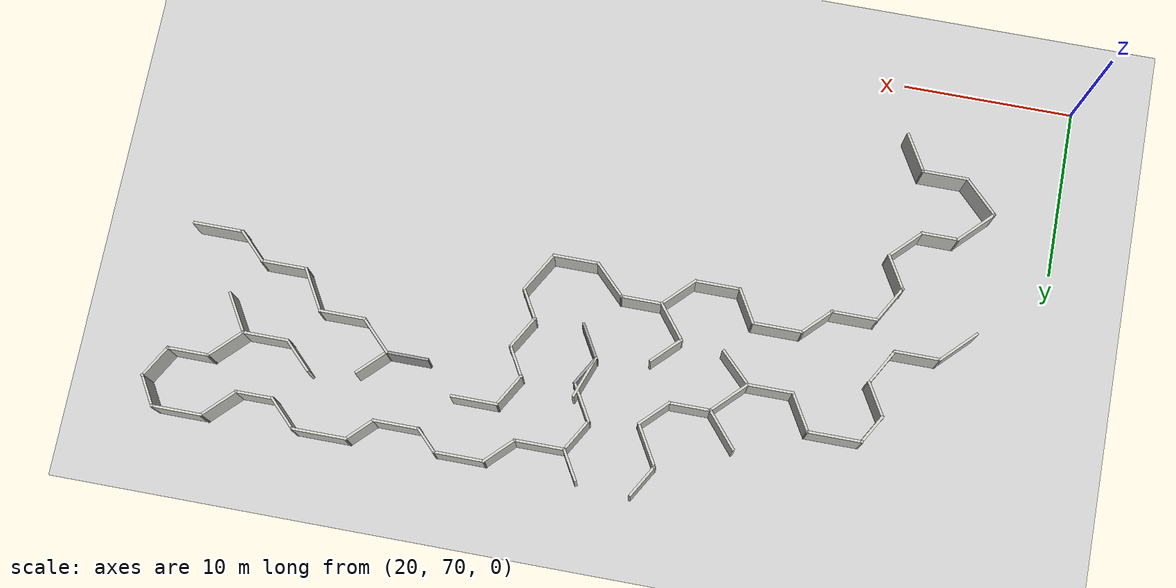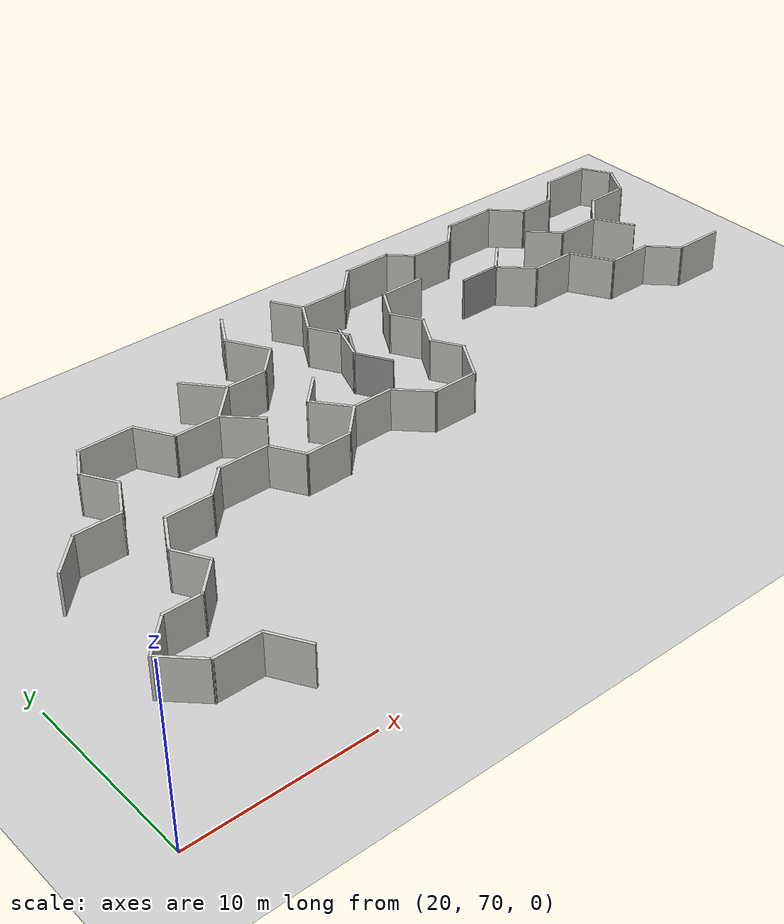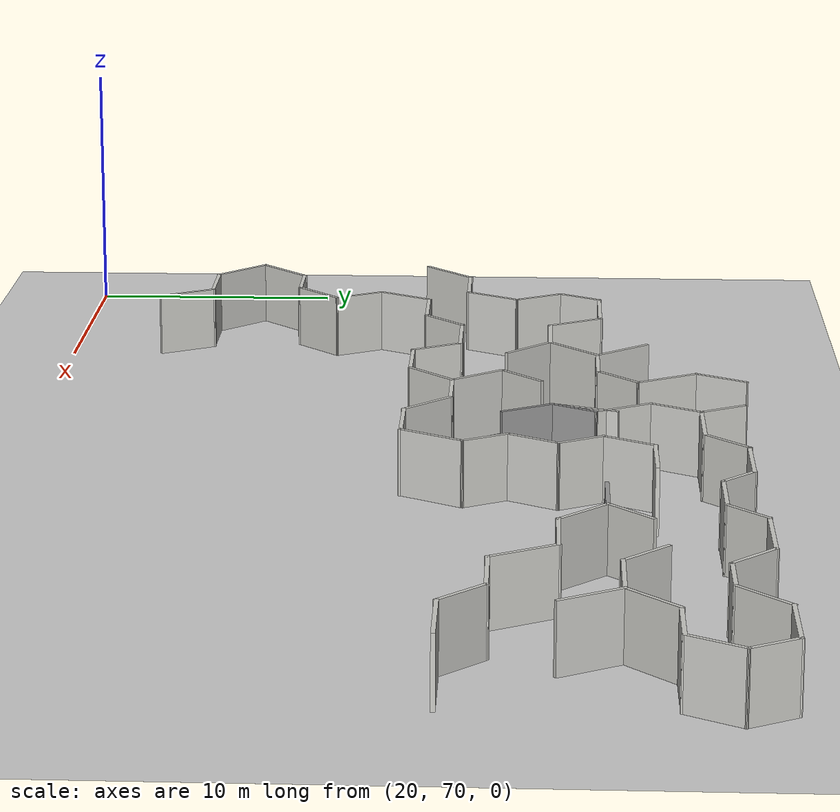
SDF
<sdf version="1.6">
 <world name="default">
  <model name="ground_plane">
   <pose>50 50 0 0 -0 0</pose>
   <static>1</static>
   <link name="link">
    <collision name="collision">
     <geometry><plane><normal>0 0 1</normal><size>100 100</size></plane></geometry>
     <surface><friction><ode><mu>100</mu><mu2>50</mu2></ode></friction></surface>
    </collision>
    <visual name="visual">
     <cast_shadows>0</cast_shadows>
     <geometry><plane><normal>0 0 1</normal><size>100 100</size></plane></geometry>
     <material>
      <script><uri>file://media/materials/scripts/gazebo.material</uri><name>Gazebo/Grey</name></script>
     </material>
    </visual>
   </link>
  </model>
  <model name="maze_1_0">
   <pose>55.5762 81.9377 0 0 -0 3.14</pose>
   <link name="Wall_10">
    <collision name="Wall_10_Collision">
     <geometry><box><size>2 0.15 2.5</size></box></geometry>
     <pose>0 0 1.25 0 -0 0</pose>
    </collision>
    <visual name="Wall_10_Visual">
     <pose>0 0 1.25 0 -0 0</pose>
     <geometry><box><size>2 0.15 2.5</size></box></geometry>
     <material>
      <script><uri>file://media/materials/scripts/gazebo.material</uri><name>Gazebo/Grey</name></script>
      <ambient>1 1 1 1</ambient>
     </material>
     <meta><layer>0</layer></meta>
    </visual>
    <pose>10.0085 -8.88058 0 0 -0 -2.0944</pose>
   </link>
   <link name="Wall_11">
    <collision name="Wall_11_Collision">
     <geometry><box><size>2.5 0.15 2.5</size></box></geometry>
     <pose>0 0 1.25 0 -0 0</pose>
    </collision>
    <visual name="Wall_11_Visual">
     <pose>0 0 1.25 0 -0 0</pose>
     <geometry><box><size>2.5 0.15 2.5</size></box></geometry>
     <material>
      <script><uri>file://media/materials/scripts/gazebo.material</uri><name>Gazebo/CeilingTiled</name></script>
      <ambient>1 1 1 1</ambient>
     </material>
     <meta><layer>0</layer></meta>
    </visual>
    <pose>10.1335 -10.6992 0 0 -0 -1.0472</pose>
   </link>
   <link name="Wall_12">
    <collision name="Wall_12_Collision">
     <geometry><box><size>2.25 0.15 2.5</size></box></geometry>
     <pose>0 0 1.25 0 -0 0</pose>
    </collision>
    <visual name="Wall_12_Visual">
     <pose>0 0 1.25 0 -0 0</pose>
     <geometry><box><size>2.25 0.15 2.5</size></box></geometry>
     <material>
      <script><uri>file://media/materials/scripts/gazebo.material</uri><name>Gazebo/CeilingTiled</name></script>
      <ambient>1 1 1 1</ambient>
     </material>
     <meta><layer>0</layer></meta>
    </visual>
    <pose>10.196 -12.6261 0 0 -0 -2.0944</pose>
   </link>
   <link name="Wall_126">
    <collision name="Wall_126_Collision">
     <geometry><box><size>2.5 0.15 2.5</size></box></geometry>
     <pose>0 0 1.25 0 -0 0</pose>
    </collision>
    <visual name="Wall_126_Visual">
     <pose>0 0 1.25 0 -0 0</pose>
     <geometry><box><size>2.5 0.15 2.5</size></box></geometry>
     <material>
      <script><uri>file://media/materials/scripts/gazebo.material</uri><name>Gazebo/Grey</name></script>
      <ambient>1 1 1 1</ambient>
     </material>
     <meta><layer>0</layer></meta>
    </visual>
    <pose>-0.135221 -9.92253 0 0 -0 3.14159</pose>
   </link>
   <link name="Wall_127">
    <collision name="Wall_127_Collision">
     <geometry><box><size>2.5 0.15 2.5</size></box></geometry>
     <pose>0 0 1.25 0 -0 0</pose>
    </collision>
    <visual name="Wall_127_Visual">
     <pose>0 0 1.25 0 -0 0</pose>
     <geometry><box><size>2.5 0.15 2.5</size></box></geometry>
     <material>
      <script><uri>file://media/materials/scripts/gazebo.material</uri><name>Gazebo/CeilingTiled</name></script>
      <ambient>1 1 1 1</ambient>
     </material>
     <meta><layer>0</layer></meta>
    </visual>
    <pose>-2.14107 -9.09168 0 0 -0 2.35619</pose>
   </link>
   <link name="Wall_128">
    <collision name="Wall_128_Collision">
     <geometry><box><size>2.75 0.15 2.5</size></box></geometry>
     <pose>0 0 1.25 0 -0 0</pose>
    </collision>
    <visual name="Wall_128_Visual">
     <pose>0 0 1.25 0 -0 0</pose>
     <geometry><box><size>2.75 0.15 2.5</size></box></geometry>
     <material>
      <script><uri>file://media/materials/scripts/gazebo.material</uri><name>Gazebo/CeilingTiled</name></script>
      <ambient>1 1 1 1</ambient>
     </material>
     <meta><layer>0</layer></meta>
    </visual>
    <pose>-4.27192 -8.26083 0 0 -0 3.14159</pose>
   </link>
   <link name="Wall_129">
    <collision name="Wall_129_Collision">
     <geometry><box><size>2.75 0.15 2.5</size></box></geometry>
     <pose>0 0 1.25 0 -0 0</pose>
    </collision>
    <visual name="Wall_129_Visual">
     <pose>0 0 1.25 0 -0 0</pose>
     <geometry><box><size>2.75 0.15 2.5</size></box></geometry>
     <material>
      <script><uri>file://media/materials/scripts/gazebo.material</uri><name>Gazebo/CeilingTiled</name></script>
      <ambient>1 1 1 1</ambient>
     </material>
     <meta><layer>0</layer></meta>
    </visual>
    <pose>-6.22192 -7.135 0 0 -0 2.0944</pose>
   </link>
   <link name="Wall_13">
    <collision name="Wall_13_Collision">
     <geometry><box><size>2 0.15 2.5</size></box></geometry>
     <pose>0 0 1.25 0 -0 0</pose>
    </collision>
    <visual name="Wall_13_Visual">
     <pose>0 0 1.25 0 -0 0</pose>
     <geometry><box><size>2 0.15 2.5</size></box></geometry>
     <material>
      <script><uri>file://media/materials/scripts/gazebo.material</uri><name>Gazebo/CeilingTiled</name></script>
      <ambient>1 1 1 1</ambient>
     </material>
     <meta><layer>0</layer></meta>
    </visual>
    <pose>10.1335 -14.3365 0 0 -0 -1.0472</pose>
   </link>
   <link name="Wall_130">
    <collision name="Wall_130_Collision">
     <geometry><box><size>2.75 0.15 2.5</size></box></geometry>
     <pose>0 0 1.25 0 -0 0</pose>
    </collision>
    <visual name="Wall_130_Visual">
     <pose>0 0 1.25 0 -0 0</pose>
     <geometry><box><size>2.75 0.15 2.5</size></box></geometry>
     <material>
      <script><uri>file://media/materials/scripts/gazebo.material</uri><name>Gazebo/CeilingTiled</name></script>
      <ambient>1 1 1 1</ambient>
     </material>
     <meta><layer>0</layer></meta>
    </visual>
    <pose>-8.17192 -6.00916 0 0 -0 3.14159</pose>
   </link>
   <link name="Wall_131">
    <collision name="Wall_131_Collision">
     <geometry><box><size>2.25 0.15 2.5</size></box></geometry>
     <pose>0 0 1.25 0 -0 0</pose>
    </collision>
    <visual name="Wall_131_Visual">
     <pose>0 0 1.25 0 -0 0</pose>
     <geometry><box><size>2.25 0.15 2.5</size></box></geometry>
     <material>
      <script><uri>file://media/materials/scripts/gazebo.material</uri><name>Gazebo/CeilingTiled</name></script>
      <ambient>1 1 1 1</ambient>
     </material>
     <meta><layer>0</layer></meta>
    </visual>
    <pose>-10.2144 -5.2667 0 0 -0 2.35619</pose>
   </link>
   <link name="Wall_132">
    <collision name="Wall_132_Collision">
     <geometry><box><size>3 0.15 2.5</size></box></geometry>
     <pose>0 0 1.25 0 -0 0</pose>
    </collision>
    <visual name="Wall_132_Visual">
     <pose>0 0 1.25 0 -0 0</pose>
     <geometry><box><size>3 0.15 2.5</size></box></geometry>
     <material>
      <script><uri>file://media/materials/scripts/gazebo.material</uri><name>Gazebo/CeilingTiled</name></script>
      <ambient>1 1 1 1</ambient>
     </material>
     <meta><layer>0</layer></meta>
    </visual>
    <pose>-12.3818 -4.52424 0 0 -0 3.14159</pose>
   </link>
   <link name="Wall_135">
    <collision name="Wall_135_Collision">
     <geometry><box><size>2.22826 0.15 2.5</size></box></geometry>
     <pose>0 0 1.25 0 -0 0</pose>
    </collision>
    <visual name="Wall_135_Visual">
     <pose>0 0 1.25 0 -0 0</pose>
     <geometry><box><size>2.22826 0.15 2.5</size></box></geometry>
     <material>
      <script><uri>file://media/materials/scripts/gazebo.material</uri><name>Gazebo/CeilingTiled</name></script>
      <ambient>1 1 1 1</ambient>
     </material>
     <meta><layer>0</layer></meta>
    </visual>
    <pose>-2.04743 -10.6549 0 0 -0 0.782082</pose>
   </link>
   <link name="Wall_137">
    <collision name="Wall_137_Collision">
     <geometry><box><size>2.75 0.15 2.5</size></box></geometry>
     <pose>0 0 1.25 0 -0 0</pose>
    </collision>
    <visual name="Wall_137_Visual">
     <pose>0 0 1.25 0 -0 0</pose>
     <geometry><box><size>2.75 0.15 2.5</size></box></geometry>
     <material>
      <script><uri>file://media/materials/scripts/gazebo.material</uri><name>Gazebo/CeilingTiled</name></script>
      <ambient>1 1 1 1</ambient>
     </material>
     <meta><layer>0</layer></meta>
    </visual>
    <pose>4.12993 -11.7127 0 0 -0 0</pose>
   </link>
   <link name="Wall_138">
    <collision name="Wall_138_Collision">
     <geometry><box><size>2.25 0.15 2.5</size></box></geometry>
     <pose>0 0 1.25 0 -0 0</pose>
    </collision>
    <visual name="Wall_138_Visual">
     <pose>0 0 1.25 0 -0 0</pose>
     <geometry><box><size>2.25 0.15 2.5</size></box></geometry>
     <material>
      <script><uri>file://media/materials/scripts/gazebo.material</uri><name>Gazebo/CeilingTiled</name></script>
      <ambient>1 1 1 1</ambient>
     </material>
     <meta><layer>0</layer></meta>
    </visual>
    <pose>5.95493 -10.8034 0 0 -0 1.0472</pose>
   </link>
   <link name="Wall_139">
    <collision name="Wall_139_Collision">
     <geometry><box><size>2 0.15 2.5</size></box></geometry>
     <pose>0 0 1.25 0 -0 0</pose>
    </collision>
    <visual name="Wall_139_Visual">
     <pose>0 0 1.25 0 -0 0</pose>
     <geometry><box><size>2 0.15 2.5</size></box></geometry>
     <material>
      <script><uri>file://media/materials/scripts/gazebo.material</uri><name>Gazebo/CeilingTiled</name></script>
      <ambient>1 1 1 1</ambient>
     </material>
     <meta><layer>0</layer></meta>
    </visual>
    <pose>6.01743 -9.09296 0 0 -0 2.0944</pose>
   </link>
   <link name="Wall_140">
    <collision name="Wall_140_Collision">
     <geometry><box><size>2.25 0.15 2.5</size></box></geometry>
     <pose>0 0 1.25 0 -0 0</pose>
    </collision>
    <visual name="Wall_140_Visual">
     <pose>0 0 1.25 0 -0 0</pose>
     <geometry><box><size>2.25 0.15 2.5</size></box></geometry>
     <material>
      <script><uri>file://media/materials/scripts/gazebo.material</uri><name>Gazebo/CeilingTiled</name></script>
      <ambient>1 1 1 1</ambient>
     </material>
     <meta><layer>0</layer></meta>
    </visual>
    <pose>6.07993 -7.38256 0 0 -0 1.0472</pose>
   </link>
   <link name="Wall_141">
    <collision name="Wall_141_Collision">
     <geometry><box><size>2 0.15 2.5</size></box></geometry>
     <pose>0 0 1.25 0 -0 0</pose>
    </collision>
    <visual name="Wall_141_Visual">
     <pose>0 0 1.25 0 -0 0</pose>
     <geometry><box><size>2 0.15 2.5</size></box></geometry>
     <material>
      <script><uri>file://media/materials/scripts/gazebo.material</uri><name>Gazebo/CeilingTiled</name></script>
      <ambient>1 1 1 1</ambient>
     </material>
     <meta><layer>0</layer></meta>
    </visual>
    <pose>6.14243 -5.67216 0 0 -0 2.0944</pose>
   </link>
   <link name="Wall_142">
    <collision name="Wall_142_Collision">
     <geometry><box><size>2.75 0.15 2.5</size></box></geometry>
     <pose>0 0 1.25 0 -0 0</pose>
    </collision>
    <visual name="Wall_142_Visual">
     <pose>0 0 1.25 0 -0 0</pose>
     <geometry><box><size>2.75 0.15 2.5</size></box></geometry>
     <material>
      <script><uri>file://media/materials/scripts/gazebo.material</uri><name>Gazebo/CeilingTiled</name></script>
      <ambient>1 1 1 1</ambient>
     </material>
     <meta><layer>0</layer></meta>
    </visual>
    <pose>6.32993 -3.74525 0 0 -0 1.0472</pose>
   </link>
   <link name="Wall_143">
    <collision name="Wall_143_Collision">
     <geometry><box><size>2.75 0.15 2.5</size></box></geometry>
     <pose>0 0 1.25 0 -0 0</pose>
    </collision>
    <visual name="Wall_143_Visual">
     <pose>0 0 1.25 0 -0 0</pose>
     <geometry><box><size>2.75 0.15 2.5</size></box></geometry>
     <material>
      <script><uri>file://media/materials/scripts/gazebo.material</uri><name>Gazebo/CeilingTiled</name></script>
      <ambient>1 1 1 1</ambient>
     </material>
     <meta><layer>0</layer></meta>
    </visual>
    <pose>8.27993 -2.61942 0 0 -0 0</pose>
   </link>
   <link name="Wall_144">
    <collision name="Wall_144_Collision">
     <geometry><box><size>2.5 0.15 2.5</size></box></geometry>
     <pose>0 0 1.25 0 -0 0</pose>
    </collision>
    <visual name="Wall_144_Visual">
     <pose>0 0 1.25 0 -0 0</pose>
     <geometry><box><size>2.5 0.15 2.5</size></box></geometry>
     <material>
      <script><uri>file://media/materials/scripts/gazebo.material</uri><name>Gazebo/CeilingTiled</name></script>
      <ambient>1 1 1 1</ambient>
     </material>
     <meta><layer>0</layer></meta>
    </visual>
    <pose>10.4108 -3.45027 0 0 -0 -0.785398</pose>
   </link>
   <link name="Wall_145">
    <collision name="Wall_145_Collision">
     <geometry><box><size>2.5 0.15 2.5</size></box></geometry>
     <pose>0 0 1.25 0 -0 0</pose>
    </collision>
    <visual name="Wall_145_Visual">
     <pose>0 0 1.25 0 -0 0</pose>
     <geometry><box><size>2.5 0.15 2.5</size></box></geometry>
     <material>
      <script><uri>file://media/materials/scripts/gazebo.material</uri><name>Gazebo/CeilingTiled</name></script>
      <ambient>1 1 1 1</ambient>
     </material>
     <meta><layer>0</layer></meta>
    </visual>
    <pose>12.4166 -4.28112 0 0 -0 0</pose>
   </link>
   <link name="Wall_146">
    <collision name="Wall_146_Collision">
     <geometry><box><size>2.5 0.15 2.5</size></box></geometry>
     <pose>0 0 1.25 0 -0 0</pose>
    </collision>
    <visual name="Wall_146_Visual">
     <pose>0 0 1.25 0 -0 0</pose>
     <geometry><box><size>2.5 0.15 2.5</size></box></geometry>
     <material>
      <script><uri>file://media/materials/scripts/gazebo.material</uri><name>Gazebo/CeilingTiled</name></script>
      <ambient>1 1 1 1</ambient>
     </material>
     <meta><layer>0</layer></meta>
    </visual>
    <pose>14.4225 -3.45027 0 0 -0 0.785398</pose>
   </link>
   <link name="Wall_147">
    <collision name="Wall_147_Collision">
     <geometry><box><size>2.75 0.15 2.5</size></box></geometry>
     <pose>0 0 1.25 0 -0 0</pose>
    </collision>
    <visual name="Wall_147_Visual">
     <pose>0 0 1.25 0 -0 0</pose>
     <geometry><box><size>2.75 0.15 2.5</size></box></geometry>
     <material>
      <script><uri>file://media/materials/scripts/gazebo.material</uri><name>Gazebo/CeilingTiled</name></script>
      <ambient>1 1 1 1</ambient>
     </material>
     <meta><layer>0</layer></meta>
    </visual>
    <pose>16.5533 -2.61942 0 0 -0 0</pose>
   </link>
   <link name="Wall_148">
    <collision name="Wall_148_Collision">
     <geometry><box><size>2.25 0.15 2.5</size></box></geometry>
     <pose>0 0 1.25 0 -0 0</pose>
    </collision>
    <visual name="Wall_148_Visual">
     <pose>0 0 1.25 0 -0 0</pose>
     <geometry><box><size>2.25 0.15 2.5</size></box></geometry>
     <material>
      <script><uri>file://media/materials/scripts/gazebo.material</uri><name>Gazebo/CeilingTiled</name></script>
      <ambient>1 1 1 1</ambient>
     </material>
     <meta><layer>0</layer></meta>
    </visual>
    <pose>18.3783 -3.52874 0 0 -0 -1.0472</pose>
   </link>
   <link name="Wall_149">
    <collision name="Wall_149_Collision">
     <geometry><box><size>3 0.15 2.5</size></box></geometry>
     <pose>0 0 1.25 0 -0 0</pose>
    </collision>
    <visual name="Wall_149_Visual">
     <pose>0 0 1.25 0 -0 0</pose>
     <geometry><box><size>3 0.15 2.5</size></box></geometry>
     <material>
      <script><uri>file://media/materials/scripts/gazebo.material</uri><name>Gazebo/CeilingTiled</name></script>
      <ambient>1 1 1 1</ambient>
     </material>
     <meta><layer>0</layer></meta>
    </visual>
    <pose>20.3283 -4.43807 0 0 -0 0</pose>
   </link>
   <link name="Wall_15">
    <collision name="Wall_15_Collision">
     <geometry><box><size>3 0.15 2.5</size></box></geometry>
     <pose>0 0 1.25 0 -0 0</pose>
    </collision>
    <visual name="Wall_15_Visual">
     <pose>0 0 1.25 0 -0 0</pose>
     <geometry><box><size>3 0.15 2.5</size></box></geometry>
     <material>
      <script><uri>file://media/materials/scripts/gazebo.material</uri><name>Gazebo/CeilingTiled</name></script>
      <ambient>1 1 1 1</ambient>
     </material>
     <meta><layer>0</layer></meta>
    </visual>
    <pose>8.24595 -13.5355 0 0 -0 3.14159</pose>
   </link>
   <link name="Wall_150">
    <collision name="Wall_150_Collision">
     <geometry><box><size>2.25 0.15 2.5</size></box></geometry>
     <pose>0 0 1.25 0 -0 0</pose>
    </collision>
    <visual name="Wall_150_Visual">
     <pose>0 0 1.25 0 -0 0</pose>
     <geometry><box><size>2.25 0.15 2.5</size></box></geometry>
     <material>
      <script><uri>file://media/materials/scripts/gazebo.material</uri><name>Gazebo/CeilingTiled</name></script>
      <ambient>1 1 1 1</ambient>
     </material>
     <meta><layer>0</layer></meta>
    </visual>
    <pose>22.4958 -3.69561 0 0 -0 0.785398</pose>
   </link>
   <link name="Wall_151">
    <collision name="Wall_151_Collision">
     <geometry><box><size>2.75 0.15 2.5</size></box></geometry>
     <pose>0 0 1.25 0 -0 0</pose>
    </collision>
    <visual name="Wall_151_Visual">
     <pose>0 0 1.25 0 -0 0</pose>
     <geometry><box><size>2.75 0.15 2.5</size></box></geometry>
     <material>
      <script><uri>file://media/materials/scripts/gazebo.material</uri><name>Gazebo/CeilingTiled</name></script>
      <ambient>1 1 1 1</ambient>
     </material>
     <meta><layer>0</layer></meta>
    </visual>
    <pose>24.5383 -2.95315 0 0 -0 0</pose>
   </link>
   <link name="Wall_152">
    <collision name="Wall_152_Collision">
     <geometry><box><size>2.5 0.15 2.5</size></box></geometry>
     <pose>0 0 1.25 0 -0 0</pose>
    </collision>
    <visual name="Wall_152_Visual">
     <pose>0 0 1.25 0 -0 0</pose>
     <geometry><box><size>2.5 0.15 2.5</size></box></geometry>
     <material>
      <script><uri>file://media/materials/scripts/gazebo.material</uri><name>Gazebo/CeilingTiled</name></script>
      <ambient>1 1 1 1</ambient>
     </material>
     <meta><layer>0</layer></meta>
    </visual>
    <pose>26.4258 -1.93557 0 0 -0 1.0472</pose>
   </link>
   <link name="Wall_153">
    <collision name="Wall_153_Collision">
     <geometry><box><size>2.25 0.15 2.5</size></box></geometry>
     <pose>0 0 1.25 0 -0 0</pose>
    </collision>
    <visual name="Wall_153_Visual">
     <pose>0 0 1.25 0 -0 0</pose>
     <geometry><box><size>2.25 0.15 2.5</size></box></geometry>
     <material>
      <script><uri>file://media/materials/scripts/gazebo.material</uri><name>Gazebo/CeilingTiled</name></script>
      <ambient>1 1 1 1</ambient>
     </material>
     <meta><layer>0</layer></meta>
    </visual>
    <pose>26.4883 -0.00866 0 0 -0 2.0944</pose>
   </link>
   <link name="Wall_154">
    <collision name="Wall_154_Collision">
     <geometry><box><size>2.5 0.15 2.5</size></box></geometry>
     <pose>0 0 1.25 0 -0 0</pose>
    </collision>
    <visual name="Wall_154_Visual">
     <pose>0 0 1.25 0 -0 0</pose>
     <geometry><box><size>2.5 0.15 2.5</size></box></geometry>
     <material>
      <script><uri>file://media/materials/scripts/gazebo.material</uri><name>Gazebo/CeilingTiled</name></script>
      <ambient>1 1 1 1</ambient>
     </material>
     <meta><layer>0</layer></meta>
    </visual>
    <pose>26.7941 1.73152 0 0 -0 0.785398</pose>
   </link>
   <link name="Wall_155">
    <collision name="Wall_155_Collision">
     <geometry><box><size>2.25 0.15 2.5</size></box></geometry>
     <pose>0 0 1.25 0 -0 0</pose>
    </collision>
    <visual name="Wall_155_Visual">
     <pose>0 0 1.25 0 -0 0</pose>
     <geometry><box><size>2.25 0.15 2.5</size></box></geometry>
     <material>
      <script><uri>file://media/materials/scripts/gazebo.material</uri><name>Gazebo/CeilingTiled</name></script>
      <ambient>1 1 1 1</ambient>
     </material>
     <meta><layer>0</layer></meta>
    </visual>
    <pose>28.675 2.56237 0 0 -0 0</pose>
   </link>
   <link name="Wall_156">
    <collision name="Wall_156_Collision">
     <geometry><box><size>2.75 0.15 2.5</size></box></geometry>
     <pose>0 0 1.25 0 -0 0</pose>
    </collision>
    <visual name="Wall_156_Visual">
     <pose>0 0 1.25 0 -0 0</pose>
     <geometry><box><size>2.75 0.15 2.5</size></box></geometry>
     <material>
      <script><uri>file://media/materials/scripts/gazebo.material</uri><name>Gazebo/CeilingTiled</name></script>
      <ambient>1 1 1 1</ambient>
     </material>
     <meta><layer>0</layer></meta>
    </visual>
    <pose>30.6442 3.48161 0 0 -0 0.785398</pose>
   </link>
   <link name="Wall_157">
    <collision name="Wall_157_Collision">
     <geometry><box><size>2.75 0.15 2.5</size></box></geometry>
     <pose>0 0 1.25 0 -0 0</pose>
    </collision>
    <visual name="Wall_157_Visual">
     <pose>0 0 1.25 0 -0 0</pose>
     <geometry><box><size>2.75 0.15 2.5</size></box></geometry>
     <material>
      <script><uri>file://media/materials/scripts/gazebo.material</uri><name>Gazebo/CeilingTiled</name></script>
      <ambient>1 1 1 1</ambient>
     </material>
     <meta><layer>0</layer></meta>
    </visual>
    <pose>30.6442 5.32008 0 0 -0 2.35619</pose>
   </link>
   <link name="Wall_158">
    <collision name="Wall_158_Collision">
     <geometry><box><size>2.75 0.15 2.5</size></box></geometry>
     <pose>0 0 1.25 0 -0 0</pose>
    </collision>
    <visual name="Wall_158_Visual">
     <pose>0 0 1.25 0 -0 0</pose>
     <geometry><box><size>2.75 0.15 2.5</size></box></geometry>
     <material>
      <script><uri>file://media/materials/scripts/gazebo.material</uri><name>Gazebo/CeilingTiled</name></script>
      <ambient>1 1 1 1</ambient>
     </material>
     <meta><layer>0</layer></meta>
    </visual>
    <pose>28.425 6.23932 0 0 -0 3.14159</pose>
   </link>
   <link name="Wall_159">
    <collision name="Wall_159_Collision">
     <geometry><box><size>2.5 0.15 2.5</size></box></geometry>
     <pose>0 0 1.25 0 -0 0</pose>
    </collision>
    <visual name="Wall_159_Visual">
     <pose>0 0 1.25 0 -0 0</pose>
     <geometry><box><size>2.5 0.15 2.5</size></box></geometry>
     <material>
      <script><uri>file://media/materials/scripts/gazebo.material</uri><name>Gazebo/CeilingTiled</name></script>
      <ambient>1 1 1 1</ambient>
     </material>
     <meta><layer>0</layer></meta>
    </visual>
    <pose>26.5375 7.2569 0 0 -0 2.0944</pose>
   </link>
   <link name="Wall_16">
    <collision name="Wall_16_Collision">
     <geometry><box><size>2.25 0.15 2.5</size></box></geometry>
     <pose>0 0 1.25 0 -0 0</pose>
    </collision>
    <visual name="Wall_16_Visual">
     <pose>0 0 1.25 0 -0 0</pose>
     <geometry><box><size>2.25 0.15 2.5</size></box></geometry>
     <material>
      <script><uri>file://media/materials/scripts/gazebo.material</uri><name>Gazebo/CeilingTiled</name></script>
      <ambient>1 1 1 1</ambient>
     </material>
     <meta><layer>0</layer></meta>
    </visual>
    <pose>6.07849 -14.2779 0 0 -0 -2.35619</pose>
   </link>
   <link name="Wall_17">
    <collision name="Wall_17_Collision">
     <geometry><box><size>3 0.15 2.5</size></box></geometry>
     <pose>0 0 1.25 0 -0 0</pose>
    </collision>
    <visual name="Wall_17_Visual">
     <pose>0 0 1.25 0 -0 0</pose>
     <geometry><box><size>3 0.15 2.5</size></box></geometry>
     <material>
      <script><uri>file://media/materials/scripts/gazebo.material</uri><name>Gazebo/CeilingTiled</name></script>
      <ambient>1 1 1 1</ambient>
     </material>
     <meta><layer>0</layer></meta>
    </visual>
    <pose>3.91103 -15.0204 0 0 -0 3.14159</pose>
   </link>
   <link name="Wall_175">
    <collision name="Wall_175_Collision">
     <geometry><box><size>2.25 0.15 2.5</size></box></geometry>
     <pose>0 0 1.25 0 -0 0</pose>
    </collision>
    <visual name="Wall_175_Visual">
     <pose>0 0 1.25 0 -0 0</pose>
     <geometry><box><size>2.25 0.15 2.5</size></box></geometry>
     <material>
      <script><uri>file://media/materials/scripts/gazebo.material</uri><name>Gazebo/CeilingTiled</name></script>
      <ambient>1 1 1 1</ambient>
     </material>
     <meta><layer>0</layer></meta>
    </visual>
    <pose>14.3133 -6.90169 0 0 -0 0.785398</pose>
   </link>
   <link name="Wall_176">
    <collision name="Wall_176_Collision">
     <geometry><box><size>2.53139 0.15 2.5</size></box></geometry>
     <pose>0 0 1.25 0 -0 0</pose>
    </collision>
    <visual name="Wall_176_Visual">
     <pose>0 0 1.25 0 -0 0</pose>
     <geometry><box><size>2.53139 0.15 2.5</size></box></geometry>
     <material>
      <script><uri>file://media/materials/scripts/gazebo.material</uri><name>Gazebo/CeilingTiled</name></script>
      <ambient>1 1 1 1</ambient>
     </material>
     <meta><layer>0</layer></meta>
    </visual>
    <pose>14.3237 -5.22017 0 0 -0 2.23296</pose>
   </link>
   <link name="Wall_178">
    <collision name="Wall_178_Collision">
     <geometry><box><size>2.5 0.15 2.5</size></box></geometry>
     <pose>0 0 1.25 0 -0 0</pose>
    </collision>
    <visual name="Wall_178_Visual">
     <pose>0 0 1.25 0 -0 0</pose>
     <geometry><box><size>2.5 0.15 2.5</size></box></geometry>
     <material>
      <script><uri>file://media/materials/scripts/gazebo.material</uri><name>Gazebo/CeilingTiled</name></script>
      <ambient>1 1 1 1</ambient>
     </material>
     <meta><layer>0</layer></meta>
    </visual>
    <pose>18.3889 -7.17307 0 0 -0 -0.785398</pose>
   </link>
   <link name="Wall_179">
    <collision name="Wall_179_Collision">
     <geometry><box><size>2.75 0.15 2.5</size></box></geometry>
     <pose>0 0 1.25 0 -0 0</pose>
    </collision>
    <visual name="Wall_179_Visual">
     <pose>0 0 1.25 0 -0 0</pose>
     <geometry><box><size>2.75 0.15 2.5</size></box></geometry>
     <material>
      <script><uri>file://media/materials/scripts/gazebo.material</uri><name>Gazebo/CeilingTiled</name></script>
      <ambient>1 1 1 1</ambient>
     </material>
     <meta><layer>0</layer></meta>
    </visual>
    <pose>18.3005 -8.92316 0 0 -0 -2.35619</pose>
   </link>
   <link name="Wall_18">
    <collision name="Wall_18_Collision">
     <geometry><box><size>1.75 0.15 2.5</size></box></geometry>
     <pose>0 0 1.25 0 -0 0</pose>
    </collision>
    <visual name="Wall_18_Visual">
     <pose>0 0 1.25 0 -0 0</pose>
     <geometry><box><size>1.75 0.15 2.5</size></box></geometry>
     <material>
      <script><uri>file://media/materials/scripts/gazebo.material</uri><name>Gazebo/CeilingTiled</name></script>
      <ambient>1 1 1 1</ambient>
     </material>
     <meta><layer>0</layer></meta>
    </visual>
    <pose>1.92034 -14.4547 0 0 -0 2.35619</pose>
   </link>
   <link name="Wall_180">
    <collision name="Wall_180_Collision">
     <geometry><box><size>2.5 0.15 2.5</size></box></geometry>
     <pose>0 0 1.25 0 -0 0</pose>
    </collision>
    <visual name="Wall_180_Visual">
     <pose>0 0 1.25 0 -0 0</pose>
     <geometry><box><size>2.5 0.15 2.5</size></box></geometry>
     <material>
      <script><uri>file://media/materials/scripts/gazebo.material</uri><name>Gazebo/CeilingTiled</name></script>
      <ambient>1 1 1 1</ambient>
     </material>
     <meta><layer>0</layer></meta>
    </visual>
    <pose>16.2062 -9.8424 0 0 -0 3.14159</pose>
   </link>
   <link name="Wall_181">
    <collision name="Wall_181_Collision">
     <geometry><box><size>2.25 0.15 2.5</size></box></geometry>
     <pose>0 0 1.25 0 -0 0</pose>
    </collision>
    <visual name="Wall_181_Visual">
     <pose>0 0 1.25 0 -0 0</pose>
     <geometry><box><size>2.25 0.15 2.5</size></box></geometry>
     <material>
      <script><uri>file://media/materials/scripts/gazebo.material</uri><name>Gazebo/CeilingTiled</name></script>
      <ambient>1 1 1 1</ambient>
     </material>
     <meta><layer>0</layer></meta>
    </visual>
    <pose>14.2888 -10.5849 0 0 -0 -2.35619</pose>
   </link>
   <link name="Wall_182">
    <collision name="Wall_182_Collision">
     <geometry><box><size>2.75 0.15 2.5</size></box></geometry>
     <pose>0 0 1.25 0 -0 0</pose>
    </collision>
    <visual name="Wall_182_Visual">
     <pose>0 0 1.25 0 -0 0</pose>
     <geometry><box><size>2.75 0.15 2.5</size></box></geometry>
     <material>
      <script><uri>file://media/materials/scripts/gazebo.material</uri><name>Gazebo/CeilingTiled</name></script>
      <ambient>1 1 1 1</ambient>
     </material>
     <meta><layer>0</layer></meta>
    </visual>
    <pose>14.1963 -12.4532 0 0 -0 -1.0472</pose>
   </link>
   <link name="Wall_183">
    <collision name="Wall_183_Collision">
     <geometry><box><size>2.25 0.15 2.5</size></box></geometry>
     <pose>0 0 1.25 0 -0 0</pose>
    </collision>
    <visual name="Wall_183_Visual">
     <pose>0 0 1.25 0 -0 0</pose>
     <geometry><box><size>2.25 0.15 2.5</size></box></geometry>
     <material>
      <script><uri>file://media/materials/scripts/gazebo.material</uri><name>Gazebo/CeilingTiled</name></script>
      <ambient>1 1 1 1</ambient>
     </material>
     <meta><layer>0</layer></meta>
    </visual>
    <pose>14.3213 -14.4883 0 0 -0 -2.0944</pose>
   </link>
   <link name="Wall_185">
    <collision name="Wall_185_Collision">
     <geometry><box><size>2.70016 0.15 2.5</size></box></geometry>
     <pose>0 0 1.25 0 -0 0</pose>
    </collision>
    <visual name="Wall_185_Visual">
     <pose>0 0 1.25 0 -0 0</pose>
     <geometry><box><size>2.70016 0.15 2.5</size></box></geometry>
     <material>
      <script><uri>file://media/materials/scripts/gazebo.material</uri><name>Gazebo/CeilingTiled</name></script>
      <ambient>1 1 1 1</ambient>
     </material>
     <meta><layer>0</layer></meta>
    </visual>
    <pose>18.202 -10.8182 0 0 -0 2.27007</pose>
   </link>
   <link name="Wall_187">
    <collision name="Wall_187_Collision">
     <geometry><box><size>2.75 0.15 2.5</size></box></geometry>
     <pose>0 0 1.25 0 -0 0</pose>
    </collision>
    <visual name="Wall_187_Visual">
     <pose>0 0 1.25 0 -0 0</pose>
     <geometry><box><size>2.75 0.15 2.5</size></box></geometry>
     <material>
      <script><uri>file://media/materials/scripts/gazebo.material</uri><name>Gazebo/CeilingTiled</name></script>
      <ambient>1 1 1 1</ambient>
     </material>
     <meta><layer>0</layer></meta>
    </visual>
    <pose>20.5197 -8.00392 0 0 -0 0</pose>
   </link>
   <link name="Wall_188">
    <collision name="Wall_188_Collision">
     <geometry><box><size>2.5 0.15 2.5</size></box></geometry>
     <pose>0 0 1.25 0 -0 0</pose>
    </collision>
    <visual name="Wall_188_Visual">
     <pose>0 0 1.25 0 -0 0</pose>
     <geometry><box><size>2.5 0.15 2.5</size></box></geometry>
     <material>
      <script><uri>file://media/materials/scripts/gazebo.material</uri><name>Gazebo/CeilingTiled</name></script>
      <ambient>1 1 1 1</ambient>
     </material>
     <meta><layer>0</layer></meta>
    </visual>
    <pose>22.4072 -9.0215 0 0 -0 -1.0472</pose>
   </link>
   <link name="Wall_189">
    <collision name="Wall_189_Collision">
     <geometry><box><size>3.25 0.15 2.5</size></box></geometry>
     <pose>0 0 1.25 0 -0 0</pose>
    </collision>
    <visual name="Wall_189_Visual">
     <pose>0 0 1.25 0 -0 0</pose>
     <geometry><box><size>3.25 0.15 2.5</size></box></geometry>
     <material>
      <script><uri>file://media/materials/scripts/gazebo.material</uri><name>Gazebo/CeilingTiled</name></script>
      <ambient>1 1 1 1</ambient>
     </material>
     <meta><layer>0</layer></meta>
    </visual>
    <pose>24.5447 -10.0391 0 0 -0 0</pose>
   </link>
   <link name="Wall_19">
    <collision name="Wall_19_Collision">
     <geometry><box><size>2.75 0.15 2.5</size></box></geometry>
     <pose>0 0 1.25 0 -0 0</pose>
    </collision>
    <visual name="Wall_19_Visual">
     <pose>0 0 1.25 0 -0 0</pose>
     <geometry><box><size>2.75 0.15 2.5</size></box></geometry>
     <material>
      <script><uri>file://media/materials/scripts/gazebo.material</uri><name>Gazebo/CeilingTiled</name></script>
      <ambient>1 1 1 1</ambient>
     </material>
     <meta><layer>0</layer></meta>
    </visual>
    <pose>0.054658 -13.889 0 0 -0 3.14159</pose>
   </link>
   <link name="Wall_190">
    <collision name="Wall_190_Collision">
     <geometry><box><size>2 0.15 2.5</size></box></geometry>
     <pose>0 0 1.25 0 -0 0</pose>
    </collision>
    <visual name="Wall_190_Visual">
     <pose>0 0 1.25 0 -0 0</pose>
     <geometry><box><size>2 0.15 2.5</size></box></geometry>
     <material>
      <script><uri>file://media/materials/scripts/gazebo.material</uri><name>Gazebo/CeilingTiled</name></script>
      <ambient>1 1 1 1</ambient>
     </material>
     <meta><layer>0</layer></meta>
    </visual>
    <pose>26.5572 -9.23801 0 0 -0 1.0472</pose>
   </link>
   <link name="Wall_191">
    <collision name="Wall_191_Collision">
     <geometry><box><size>2.25 0.15 2.5</size></box></geometry>
     <pose>0 0 1.25 0 -0 0</pose>
    </collision>
    <visual name="Wall_191_Visual">
     <pose>0 0 1.25 0 -0 0</pose>
     <geometry><box><size>2.25 0.15 2.5</size></box></geometry>
     <material>
      <script><uri>file://media/materials/scripts/gazebo.material</uri><name>Gazebo/CeilingTiled</name></script>
      <ambient>1 1 1 1</ambient>
     </material>
     <meta><layer>0</layer></meta>
    </visual>
    <pose>26.4947 -7.52761 0 0 -0 2.0944</pose>
   </link>
   <link name="Wall_192">
    <collision name="Wall_192_Collision">
     <geometry><box><size>2.5 0.15 2.5</size></box></geometry>
     <pose>0 0 1.25 0 -0 0</pose>
    </collision>
    <visual name="Wall_192_Visual">
     <pose>0 0 1.25 0 -0 0</pose>
     <geometry><box><size>2.5 0.15 2.5</size></box></geometry>
     <material>
      <script><uri>file://media/materials/scripts/gazebo.material</uri><name>Gazebo/CeilingTiled</name></script>
      <ambient>1 1 1 1</ambient>
     </material>
     <meta><layer>0</layer></meta>
    </visual>
    <pose>26.5572 -5.6007 0 0 -0 1.0472</pose>
   </link>
   <link name="Wall_193">
    <collision name="Wall_193_Collision">
     <geometry><box><size>2.75 0.15 2.5</size></box></geometry>
     <pose>0 0 1.25 0 -0 0</pose>
    </collision>
    <visual name="Wall_193_Visual">
     <pose>0 0 1.25 0 -0 0</pose>
     <geometry><box><size>2.75 0.15 2.5</size></box></geometry>
     <material>
      <script><uri>file://media/materials/scripts/gazebo.material</uri><name>Gazebo/CeilingTiled</name></script>
      <ambient>1 1 1 1</ambient>
     </material>
     <meta><layer>0</layer></meta>
    </visual>
    <pose>28.4447 -4.58312 0 0 -0 0</pose>
   </link>
   <link name="Wall_194">
    <collision name="Wall_194_Collision">
     <geometry><box><size>2.75 0.15 2.5</size></box></geometry>
     <pose>0 0 1.25 0 -0 0</pose>
    </collision>
    <visual name="Wall_194_Visual">
     <pose>0 0 1.25 0 -0 0</pose>
     <geometry><box><size>2.75 0.15 2.5</size></box></geometry>
     <material>
      <script><uri>file://media/materials/scripts/gazebo.material</uri><name>Gazebo/CeilingTiled</name></script>
      <ambient>1 1 1 1</ambient>
     </material>
     <meta><layer>0</layer></meta>
    </visual>
    <pose>30.664 -3.66389 0 0 -0 0.785398</pose>
   </link>
   <link name="Wall_20">
    <collision name="Wall_20_Collision">
     <geometry><box><size>2 0.15 2.5</size></box></geometry>
     <pose>0 0 1.25 0 -0 0</pose>
    </collision>
    <visual name="Wall_20_Visual">
     <pose>0 0 1.25 0 -0 0</pose>
     <geometry><box><size>2 0.15 2.5</size></box></geometry>
     <material>
      <script><uri>file://media/materials/scripts/gazebo.material</uri><name>Gazebo/CeilingTiled</name></script>
      <ambient>1 1 1 1</ambient>
     </material>
     <meta><layer>0</layer></meta>
    </visual>
    <pose>-1.89942 -14.5431 0 0 -0 -2.35619</pose>
   </link>
   <link name="Wall_21">
    <collision name="Wall_21_Collision">
     <geometry><box><size>3.25 0.15 2.5</size></box></geometry>
     <pose>0 0 1.25 0 -0 0</pose>
    </collision>
    <visual name="Wall_21_Visual">
     <pose>0 0 1.25 0 -0 0</pose>
     <geometry><box><size>3.25 0.15 2.5</size></box></geometry>
     <material>
      <script><uri>file://media/materials/scripts/gazebo.material</uri><name>Gazebo/CeilingTiled</name></script>
      <ambient>1 1 1 1</ambient>
     </material>
     <meta><layer>0</layer></meta>
    </visual>
    <pose>-4.10349 -15.1972 0 0 -0 3.14159</pose>
   </link>
   <link name="Wall_22">
    <collision name="Wall_22_Collision">
     <geometry><box><size>2.25 0.15 2.5</size></box></geometry>
     <pose>0 0 1.25 0 -0 0</pose>
    </collision>
    <visual name="Wall_22_Visual">
     <pose>0 0 1.25 0 -0 0</pose>
     <geometry><box><size>2.25 0.15 2.5</size></box></geometry>
     <material>
      <script><uri>file://media/materials/scripts/gazebo.material</uri><name>Gazebo/CeilingTiled</name></script>
      <ambient>1 1 1 1</ambient>
     </material>
     <meta><layer>0</layer></meta>
    </visual>
    <pose>-6.39595 -14.4547 0 0 -0 2.35619</pose>
   </link>
   <link name="Wall_23">
    <collision name="Wall_23_Collision">
     <geometry><box><size>2.25 0.15 2.5</size></box></geometry>
     <pose>0 0 1.25 0 -0 0</pose>
    </collision>
    <visual name="Wall_23_Visual">
     <pose>0 0 1.25 0 -0 0</pose>
     <geometry><box><size>2.25 0.15 2.5</size></box></geometry>
     <material>
      <script><uri>file://media/materials/scripts/gazebo.material</uri><name>Gazebo/CeilingTiled</name></script>
      <ambient>1 1 1 1</ambient>
     </material>
     <meta><layer>0</layer></meta>
    </visual>
    <pose>-8.18841 -13.7122 0 0 -0 3.14159</pose>
   </link>
   <link name="Wall_24">
    <collision name="Wall_24_Collision">
     <geometry><box><size>2.5 0.15 2.5</size></box></geometry>
     <pose>0 0 1.25 0 -0 0</pose>
    </collision>
    <visual name="Wall_24_Visual">
     <pose>0 0 1.25 0 -0 0</pose>
     <geometry><box><size>2.5 0.15 2.5</size></box></geometry>
     <material>
      <script><uri>file://media/materials/scripts/gazebo.material</uri><name>Gazebo/CeilingTiled</name></script>
      <ambient>1 1 1 1</ambient>
     </material>
     <meta><layer>0</layer></meta>
    </visual>
    <pose>-10.0693 -14.5431 0 0 -0 -2.35619</pose>
   </link>
   <link name="Wall_25">
    <collision name="Wall_25_Collision">
     <geometry><box><size>3 0.15 2.5</size></box></geometry>
     <pose>0 0 1.25 0 -0 0</pose>
    </collision>
    <visual name="Wall_25_Visual">
     <pose>0 0 1.25 0 -0 0</pose>
     <geometry><box><size>3 0.15 2.5</size></box></geometry>
     <material>
      <script><uri>file://media/materials/scripts/gazebo.material</uri><name>Gazebo/CeilingTiled</name></script>
      <ambient>1 1 1 1</ambient>
     </material>
     <meta><layer>0</layer></meta>
    </visual>
    <pose>-12.3251 -15.3739 0 0 -0 3.14159</pose>
   </link>
   <link name="Wall_26">
    <collision name="Wall_26_Collision">
     <geometry><box><size>2 0.15 2.5</size></box></geometry>
     <pose>0 0 1.25 0 -0 0</pose>
    </collision>
    <visual name="Wall_26_Visual">
     <pose>0 0 1.25 0 -0 0</pose>
     <geometry><box><size>2 0.15 2.5</size></box></geometry>
     <material>
      <script><uri>file://media/materials/scripts/gazebo.material</uri><name>Gazebo/CeilingTiled</name></script>
      <ambient>1 1 1 1</ambient>
     </material>
     <meta><layer>0</layer></meta>
    </visual>
    <pose>-14.2126 -14.5729 0 0 -0 2.0944</pose>
   </link>
   <link name="Wall_27">
    <collision name="Wall_27_Collision">
     <geometry><box><size>2.25 0.15 2.5</size></box></geometry>
     <pose>0 0 1.25 0 -0 0</pose>
    </collision>
    <visual name="Wall_27_Visual">
     <pose>0 0 1.25 0 -0 0</pose>
     <geometry><box><size>2.25 0.15 2.5</size></box></geometry>
     <material>
      <script><uri>file://media/materials/scripts/gazebo.material</uri><name>Gazebo/CeilingTiled</name></script>
      <ambient>1 1 1 1</ambient>
     </material>
     <meta><layer>0</layer></meta>
    </visual>
    <pose>-14.1501 -12.8625 0 0 -0 1.0472</pose>
   </link>
   <link name="Wall_28">
    <collision name="Wall_28_Collision">
     <geometry><box><size>2.5 0.15 2.5</size></box></geometry>
     <pose>0 0 1.25 0 -0 0</pose>
    </collision>
    <visual name="Wall_28_Visual">
     <pose>0 0 1.25 0 -0 0</pose>
     <geometry><box><size>2.5 0.15 2.5</size></box></geometry>
     <material>
      <script><uri>file://media/materials/scripts/gazebo.material</uri><name>Gazebo/CeilingTiled</name></script>
      <ambient>1 1 1 1</ambient>
     </material>
     <meta><layer>0</layer></meta>
    </visual>
    <pose>-12.4501 -11.9531 0 0 -0 0</pose>
   </link>
   <link name="Wall_29">
    <collision name="Wall_29_Collision">
     <geometry><box><size>2.5 0.15 2.5</size></box></geometry>
     <pose>0 0 1.25 0 -0 0</pose>
    </collision>
    <visual name="Wall_29_Visual">
     <pose>0 0 1.25 0 -0 0</pose>
     <geometry><box><size>2.5 0.15 2.5</size></box></geometry>
     <material>
      <script><uri>file://media/materials/scripts/gazebo.material</uri><name>Gazebo/CeilingTiled</name></script>
      <ambient>1 1 1 1</ambient>
     </material>
     <meta><layer>0</layer></meta>
    </visual>
    <pose>-10.4443 -11.1223 0 0 -0 0.785398</pose>
   </link>
   <link name="Wall_30">
    <collision name="Wall_30_Collision">
     <geometry><box><size>2.75 0.15 2.5</size></box></geometry>
     <pose>0 0 1.25 0 -0 0</pose>
    </collision>
    <visual name="Wall_30_Visual">
     <pose>0 0 1.25 0 -0 0</pose>
     <geometry><box><size>2.75 0.15 2.5</size></box></geometry>
     <material>
      <script><uri>file://media/materials/scripts/gazebo.material</uri><name>Gazebo/CeilingTiled</name></script>
      <ambient>1 1 1 1</ambient>
     </material>
     <meta><layer>0</layer></meta>
    </visual>
    <pose>-8.31341 -10.2914 0 0 -0 0</pose>
   </link>
   <link name="Wall_31">
    <collision name="Wall_31_Collision">
     <geometry><box><size>2.25 0.15 2.5</size></box></geometry>
     <pose>0 0 1.25 0 -0 0</pose>
    </collision>
    <visual name="Wall_31_Visual">
     <pose>0 0 1.25 0 -0 0</pose>
     <geometry><box><size>2.25 0.15 2.5</size></box></geometry>
     <material>
      <script><uri>file://media/materials/scripts/gazebo.material</uri><name>Gazebo/CeilingTiled</name></script>
      <ambient>1 1 1 1</ambient>
     </material>
     <meta><layer>0</layer></meta>
    </visual>
    <pose>-6.27095 -11.0339 0 0 -0 -0.785398</pose>
   </link>
   <link name="Wall_33">
    <collision name="Wall_33_Collision">
     <geometry><box><size>2.56291 0.15 2.5</size></box></geometry>
     <pose>0 0 1.25 0 -0 0</pose>
    </collision>
    <visual name="Wall_33_Visual">
     <pose>0 0 1.25 0 -0 0</pose>
     <geometry><box><size>2.56291 0.15 2.5</size></box></geometry>
     <material>
      <script><uri>file://media/materials/scripts/gazebo.material</uri><name>Gazebo/CeilingTiled</name></script>
      <ambient>1 1 1 1</ambient>
     </material>
     <meta><layer>0</layer></meta>
    </visual>
    <pose>-10.2269 -9.25259 0 0 -0 -1.03738</pose>
   </link>
   <link name="Wall_5">
    <collision name="Wall_5_Collision">
     <geometry><box><size>2.25 0.15 2.5</size></box></geometry>
     <pose>0 0 1.25 0 -0 0</pose>
    </collision>
    <visual name="Wall_5_Visual">
     <pose>0 0 1.25 0 -0 0</pose>
     <geometry><box><size>2.25 0.15 2.5</size></box></geometry>
     <material>
      <script><uri>file://media/materials/scripts/gazebo.material</uri><name>Gazebo/Grey</name></script>
      <ambient>1 1 1 1</ambient>
     </material>
     <meta><layer>0</layer></meta>
    </visual>
    <pose>9.94595 -7.17018 0 0 -0 -1.0472</pose>
   </link>
   <link name="Wall_6">
    <collision name="Wall_6_Collision">
     <geometry><box><size>2.65885 0.15 2.5</size></box></geometry>
     <pose>0 0 1.25 0 -0 0</pose>
    </collision>
    <visual name="Wall_6_Visual">
     <pose>0 0 1.25 0 -0 0</pose>
     <geometry><box><size>2.65885 0.15 2.5</size></box></geometry>
     <material>
      <script><uri>file://media/materials/scripts/gazebo.material</uri><name>Gazebo/CeilingTiled</name></script>
      <ambient>1 1 1 1</ambient>
     </material>
     <meta><layer>0</layer></meta>
    </visual>
    <pose>10.0462 -9.25983 0 0 -0 -1.91623</pose>
   </link>
   <link name="Wall_9">
    <collision name="Wall_9_Collision">
     <geometry><box><size>2.25 0.15 2.5</size></box></geometry>
     <pose>0 0 1.25 0 -0 0</pose>
    </collision>
    <visual name="Wall_9_Visual">
     <pose>0 0 1.25 0 -0 0</pose>
     <geometry><box><size>2.25 0.15 2.5</size></box></geometry>
     <material>
      <script><uri>file://media/materials/scripts/gazebo.material</uri><name>Gazebo/CeilingTiled</name></script>
      <ambient>1 1 1 1</ambient>
     </material>
     <meta><layer>0</layer></meta>
    </visual>
    <pose>9.94595 -7.17018 0 0 -0 -1.0472</pose>
   </link>
   <static>1</static>
  </model>
 </world>
</sdf>
